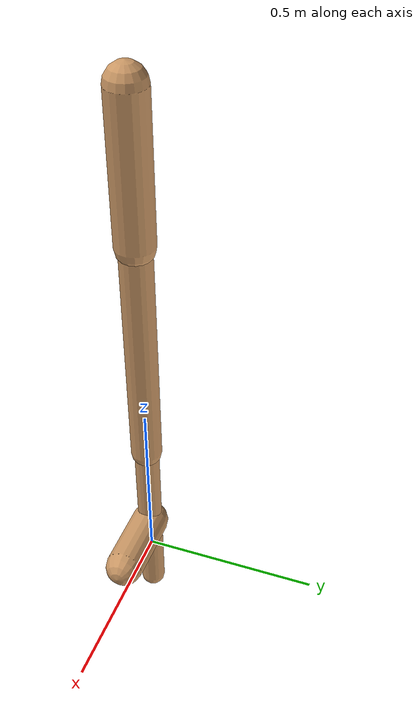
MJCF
<mujoco model="walker2d">
  <compiler angle="degree" coordinate="global" inertiafromgeom="true" />
  <default>
    <joint armature="0.01" damping=".1" limited="true" />
    <geom conaffinity="0" condim="3" contype="1" density="1000" friction="0.8 .1 .1" rgba="0.8 0.6 .4 1" />
  </default>
  <option integrator="RK4" timestep="0.002" />
  <worldbody>

    <body name="torso" pos="0 0 0.4634949408710506">
      <joint armature="0" axis="1 0 0" damping="0" limited="false" name="ignorex" pos="0 0 0" stiffness="0" type="slide" />
      <joint armature="0" axis="0 0 1" damping="0" limited="false" name="ignorez" pos="0 0 0" ref="1.25" stiffness="0" type="slide" />
      <joint armature="0" axis="0 1 0" damping="0" limited="false" name="ignorey" pos="0 0 0" stiffness="0" type="hinge" />
      <geom fromto="0 0 1.45 0 0 1.05" name="torso_geom" size="0.05334344767202958" type="capsule" />
      <body name="thigh">
        <joint axis="0 -1 0" name="thigh_joint" pos="0 0 1.05" range="-150 0" type="hinge" />
        <geom fromto="0.0 0.0 1.05 0.0 0.0 0.38044976485055493" name="thigh_geom" size="0.04372452944230091" type="capsule" />
        <body name="leg" pos="0.0 0.0 -0.21955023514944505">
          <joint axis="0 -1 0" name="leg_joint" pos="0 0 0.6" range="-150 0" type="hinge" />
          <geom fromto="0.0 0.0 0.6 0.0 0.0 -0.14394470572160556" name="leg_geom" size="0.034979623553840725" type="capsule" />
          <body name="foot" pos="0.0 0.0 -0.24394470572160556">
            <joint axis="0 -1 0" name="foot_joint" pos="0 0 0.1" range="-45 45" type="hinge" />
            <geom fromto="0.0 0.0 0.1 0.19678622160636006 0.0 0.1" name="foot_geom" size="0.053038793267330235" type="capsule" />
          </body>
        </body>
      </body>

      <body name="thigh_left">
        <joint axis="0 -1 0" name="thigh_left_joint" pos="0 0 1.05" range="-150 0" type="hinge" />
        <geom fromto="0.0 0.0 1.05 0.0 0.0 0.38044976485055493" name="thigh_left_geom" rgba=".7 .3 .6 1" size="0.04372452944230091" type="capsule" />
        <body name="leg_left" pos="0.0 0.0 -0.21955023514944505">
          <joint axis="0 -1 0" name="leg_left_joint" pos="0 0 0.6" range="-150 0" type="hinge" />
          <geom fromto="0.0 0.0 0.6 0.0 0.0 -0.14394470572160556" name="leg_left_geom" rgba=".7 .3 .6 1" size="0.034979623553840725" type="capsule" />
          <body name="foot_left" pos="0.0 0.0 -0.24394470572160556">
            <joint axis="0 -1 0" name="foot_left_joint" pos="0 0 0.1" range="-45 45" type="hinge" />
            <geom fromto="0.0 0.0 0.1 0.19678622160636006 0.0 0.1" name="foot_left_geom" rgba=".7 .3 .6 1" size="0.053038793267330235" type="capsule" />
          </body>
        </body>
      </body>
    </body>
  </worldbody>
  <actuator>

    <motor ctrllimited="true" ctrlrange="-1.0 1.0" gear="100" joint="thigh_joint" />
    <motor ctrllimited="true" ctrlrange="-1.0 1.0" gear="100" joint="leg_joint" />
    <motor ctrllimited="true" ctrlrange="-1.0 1.0" gear="100" joint="foot_joint" />
    <motor ctrllimited="true" ctrlrange="-1.0 1.0" gear="100" joint="thigh_left_joint" />
    <motor ctrllimited="true" ctrlrange="-1.0 1.0" gear="100" joint="leg_left_joint" />
    <motor ctrllimited="true" ctrlrange="-1.0 1.0" gear="100" joint="foot_left_joint" />

  </actuator>
</mujoco>
